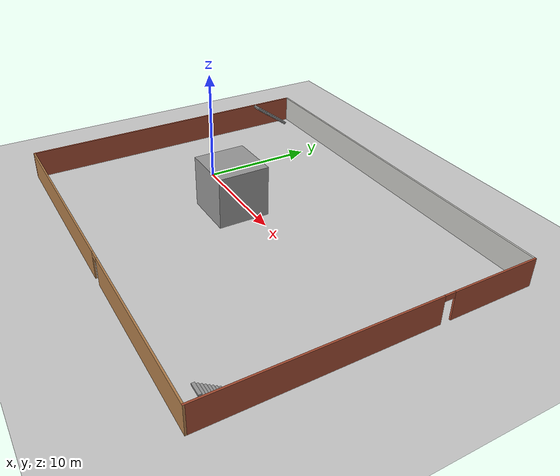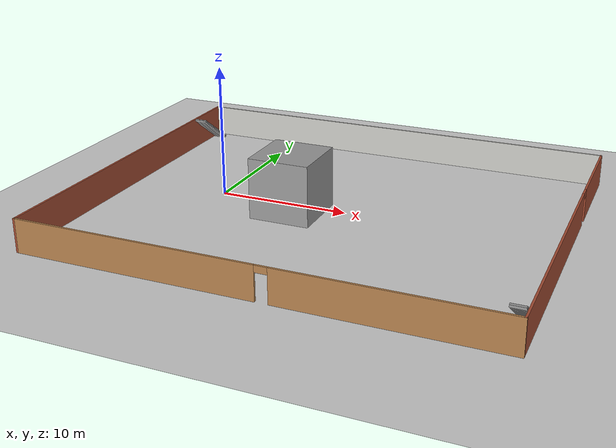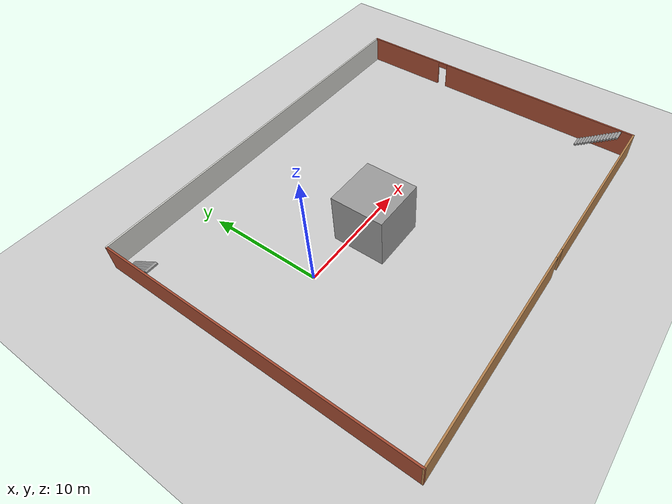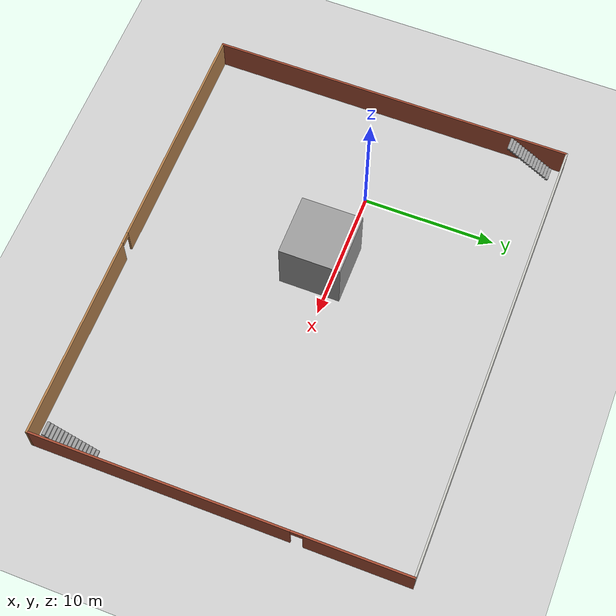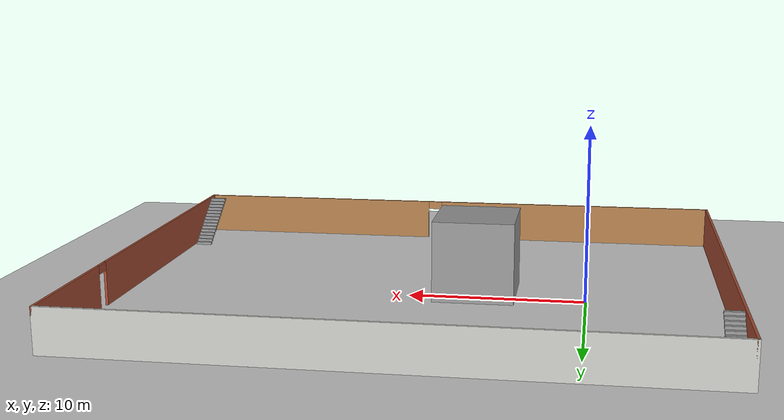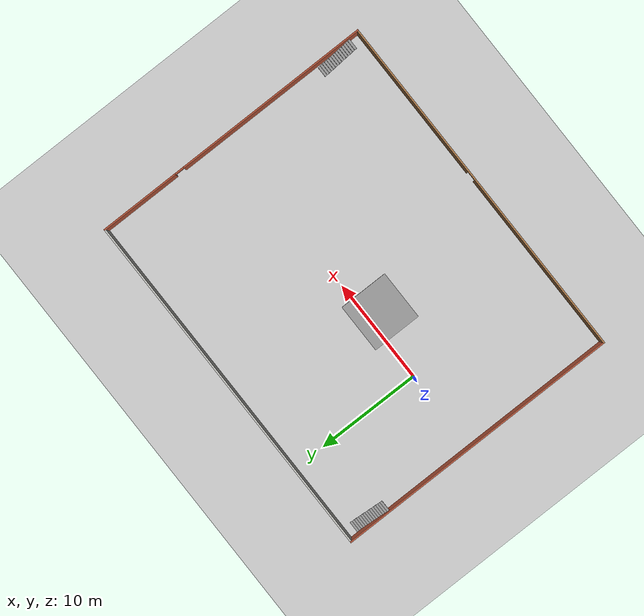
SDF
<sdf version="1.7">
 <world name="default">
  <scene><ambient>0.4 0.4 0.4 1</ambient><background>0.7 0.7 0.7 1</background><shadows>1</shadows></scene>
  <light name="sun" type="directional">
   <pose>0 0 10 0 -0 0</pose>
   <diffuse>0.8 0.8 0.8 1</diffuse>
   <specular>0.2 0.2 0.2 1</specular>
   <attenuation>
    <range>1000</range>
    <constant>0.9</constant>
    <linear>0.01</linear>
    <quadratic>0.001</quadratic>
   </attenuation>
   <direction>-0.5 0.1 -0.9</direction>
   <spot><inner_angle>0</inner_angle><outer_angle>0</outer_angle><falloff>0</falloff></spot>
  </light>
  <model name="ground_plane">
   <static>1</static>
   <link name="link">
    <collision name="collision">
     <geometry><plane><normal>0 0 1</normal><size>100 100</size></plane></geometry>
     <surface>
      <contact><collide_bitmask>65535</collide_bitmask></contact>
      <friction><ode><mu>100</mu><mu2>50</mu2></ode></friction>
     </surface>
    </collision>
    <visual name="visual">
     <cast_shadows>0</cast_shadows>
     <geometry><plane><normal>0 0 1</normal><size>100 100</size></plane></geometry>
     <material>
      <script><uri>file://media/materials/scripts/gazebo.material</uri><name>Gazebo/Grey</name></script>
     </material>
    </visual>
   </link>
  </model>
  <physics type="ode">
   <real_time_update_rate>1000</real_time_update_rate>
   <max_step_size>0.001</max_step_size>
   <real_time_factor>1</real_time_factor>
   <ode>
    <solver>
     <type>quick</type>
     <iters>150</iters>
     <precon_iters>0</precon_iters>
     <sor>1.4</sor>
     <use_dynamic_moi_rescaling>1</use_dynamic_moi_rescaling>
    </solver>
    <constraints>
     <cfm>1e-05</cfm>
     <erp>0.2</erp>
     <contact_max_correcting_vel>2000</contact_max_correcting_vel>
     <contact_surface_layer>0.01</contact_surface_layer>
    </constraints>
   </ode>
  </physics>
  <gravity>0 0 -9.8</gravity>
  <magnetic_field>6e-06 2.3e-05 -4.2e-05</magnetic_field>
  <atmosphere type="adiabatic"/>
  <spherical_coordinates>
   <surface_model>EARTH_WGS84</surface_model>
   <latitude_deg>0</latitude_deg>
   <longitude_deg>0</longitude_deg>
   <elevation>0</elevation>
   <heading_deg>0</heading_deg>
  </spherical_coordinates>
  <model name="warehouse_small">
   <pose>9.32387 -0.839581 0 0 -0 0</pose>
   <link name="Stairs_0">
    <visual name="Stairs_0_Visual_0">
     <pose>-16.4157 12.9249 0.083333 0 -0 0</pose>
     <geometry><box><size>1 0.233333 0.166667</size></box></geometry>
     <material>
      <script><uri>file://media/materials/scripts/gazebo.material</uri><name>Gazebo/Grey</name></script>
      <ambient>1 1 1 1</ambient>
     </material>
     <meta><layer>0</layer></meta>
    </visual>
    <collision name="Stairs_0_Collision_0">
     <geometry><box><size>1 0.233333 0.166667</size></box></geometry>
     <pose>-16.4157 12.9249 0.083333 0 -0 0</pose>
    </collision>
    <visual name="Stairs_0_Visual_1">
     <pose>-16.4157 12.6916 0.25 0 -0 0</pose>
     <geometry><box><size>1 0.233333 0.166667</size></box></geometry>
     <material>
      <script><uri>file://media/materials/scripts/gazebo.material</uri><name>Gazebo/Grey</name></script>
      <ambient>1 1 1 1</ambient>
     </material>
     <meta><layer>0</layer></meta>
    </visual>
    <collision name="Stairs_0_Collision_1">
     <geometry><box><size>1 0.233333 0.166667</size></box></geometry>
     <pose>-16.4157 12.6916 0.25 0 -0 0</pose>
    </collision>
    <visual name="Stairs_0_Visual_2">
     <pose>-16.4157 12.4583 0.416667 0 -0 0</pose>
     <geometry><box><size>1 0.233333 0.166667</size></box></geometry>
     <material>
      <script><uri>file://media/materials/scripts/gazebo.material</uri><name>Gazebo/Grey</name></script>
      <ambient>1 1 1 1</ambient>
     </material>
     <meta><layer>0</layer></meta>
    </visual>
    <collision name="Stairs_0_Collision_2">
     <geometry><box><size>1 0.233333 0.166667</size></box></geometry>
     <pose>-16.4157 12.4583 0.416667 0 -0 0</pose>
    </collision>
    <visual name="Stairs_0_Visual_3">
     <pose>-16.4157 12.2249 0.583333 0 -0 0</pose>
     <geometry><box><size>1 0.233333 0.166667</size></box></geometry>
     <material>
      <script><uri>file://media/materials/scripts/gazebo.material</uri><name>Gazebo/Grey</name></script>
      <ambient>1 1 1 1</ambient>
     </material>
     <meta><layer>0</layer></meta>
    </visual>
    <collision name="Stairs_0_Collision_3">
     <geometry><box><size>1 0.233333 0.166667</size></box></geometry>
     <pose>-16.4157 12.2249 0.583333 0 -0 0</pose>
    </collision>
    <visual name="Stairs_0_Visual_4">
     <pose>-16.4157 11.9916 0.75 0 -0 0</pose>
     <geometry><box><size>1 0.233333 0.166667</size></box></geometry>
     <material>
      <script><uri>file://media/materials/scripts/gazebo.material</uri><name>Gazebo/Grey</name></script>
      <ambient>1 1 1 1</ambient>
     </material>
     <meta><layer>0</layer></meta>
    </visual>
    <collision name="Stairs_0_Collision_4">
     <geometry><box><size>1 0.233333 0.166667</size></box></geometry>
     <pose>-16.4157 11.9916 0.75 0 -0 0</pose>
    </collision>
    <visual name="Stairs_0_Visual_5">
     <pose>-16.4157 11.7583 0.916667 0 -0 0</pose>
     <geometry><box><size>1 0.233333 0.166667</size></box></geometry>
     <material>
      <script><uri>file://media/materials/scripts/gazebo.material</uri><name>Gazebo/Grey</name></script>
      <ambient>1 1 1 1</ambient>
     </material>
     <meta><layer>0</layer></meta>
    </visual>
    <collision name="Stairs_0_Collision_5">
     <geometry><box><size>1 0.233333 0.166667</size></box></geometry>
     <pose>-16.4157 11.7583 0.916667 0 -0 0</pose>
    </collision>
    <visual name="Stairs_0_Visual_6">
     <pose>-16.4157 11.5249 1.08333 0 -0 0</pose>
     <geometry><box><size>1 0.233333 0.166667</size></box></geometry>
     <material>
      <script><uri>file://media/materials/scripts/gazebo.material</uri><name>Gazebo/Grey</name></script>
      <ambient>1 1 1 1</ambient>
     </material>
     <meta><layer>0</layer></meta>
    </visual>
    <collision name="Stairs_0_Collision_6">
     <geometry><box><size>1 0.233333 0.166667</size></box></geometry>
     <pose>-16.4157 11.5249 1.08333 0 -0 0</pose>
    </collision>
    <visual name="Stairs_0_Visual_7">
     <pose>-16.4157 11.2916 1.25 0 -0 0</pose>
     <geometry><box><size>1 0.233333 0.166667</size></box></geometry>
     <material>
      <script><uri>file://media/materials/scripts/gazebo.material</uri><name>Gazebo/Grey</name></script>
      <ambient>1 1 1 1</ambient>
     </material>
     <meta><layer>0</layer></meta>
    </visual>
    <collision name="Stairs_0_Collision_7">
     <geometry><box><size>1 0.233333 0.166667</size></box></geometry>
     <pose>-16.4157 11.2916 1.25 0 -0 0</pose>
    </collision>
    <visual name="Stairs_0_Visual_8">
     <pose>-16.4157 11.0583 1.41667 0 -0 0</pose>
     <geometry><box><size>1 0.233333 0.166667</size></box></geometry>
     <material>
      <script><uri>file://media/materials/scripts/gazebo.material</uri><name>Gazebo/Grey</name></script>
      <ambient>1 1 1 1</ambient>
     </material>
     <meta><layer>0</layer></meta>
    </visual>
    <collision name="Stairs_0_Collision_8">
     <geometry><box><size>1 0.233333 0.166667</size></box></geometry>
     <pose>-16.4157 11.0583 1.41667 0 -0 0</pose>
    </collision>
    <visual name="Stairs_0_Visual_9">
     <pose>-16.4157 10.8249 1.58333 0 -0 0</pose>
     <geometry><box><size>1 0.233333 0.166667</size></box></geometry>
     <material>
      <script><uri>file://media/materials/scripts/gazebo.material</uri><name>Gazebo/Grey</name></script>
      <ambient>1 1 1 1</ambient>
     </material>
     <meta><layer>0</layer></meta>
    </visual>
    <collision name="Stairs_0_Collision_9">
     <geometry><box><size>1 0.233333 0.166667</size></box></geometry>
     <pose>-16.4157 10.8249 1.58333 0 -0 0</pose>
    </collision>
    <visual name="Stairs_0_Visual_10">
     <pose>-16.4157 10.5916 1.75 0 -0 0</pose>
     <geometry><box><size>1 0.233333 0.166667</size></box></geometry>
     <material>
      <script><uri>file://media/materials/scripts/gazebo.material</uri><name>Gazebo/Grey</name></script>
      <ambient>1 1 1 1</ambient>
     </material>
     <meta><layer>0</layer></meta>
    </visual>
    <collision name="Stairs_0_Collision_10">
     <geometry><box><size>1 0.233333 0.166667</size></box></geometry>
     <pose>-16.4157 10.5916 1.75 0 -0 0</pose>
    </collision>
    <visual name="Stairs_0_Visual_11">
     <pose>-16.4157 10.3583 1.91667 0 -0 0</pose>
     <geometry><box><size>1 0.233333 0.166667</size></box></geometry>
     <material>
      <script><uri>file://media/materials/scripts/gazebo.material</uri><name>Gazebo/Grey</name></script>
      <ambient>1 1 1 1</ambient>
     </material>
     <meta><layer>0</layer></meta>
    </visual>
    <collision name="Stairs_0_Collision_11">
     <geometry><box><size>1 0.233333 0.166667</size></box></geometry>
     <pose>-16.4157 10.3583 1.91667 0 -0 0</pose>
    </collision>
    <visual name="Stairs_0_Visual_12">
     <pose>-16.4157 10.1249 2.08333 0 -0 0</pose>
     <geometry><box><size>1 0.233333 0.166667</size></box></geometry>
     <material>
      <script><uri>file://media/materials/scripts/gazebo.material</uri><name>Gazebo/Grey</name></script>
      <ambient>1 1 1 1</ambient>
     </material>
     <meta><layer>0</layer></meta>
    </visual>
    <collision name="Stairs_0_Collision_12">
     <geometry><box><size>1 0.233333 0.166667</size></box></geometry>
     <pose>-16.4157 10.1249 2.08333 0 -0 0</pose>
    </collision>
    <visual name="Stairs_0_Visual_13">
     <pose>-16.4157 9.8916 2.25 0 -0 0</pose>
     <geometry><box><size>1 0.233333 0.166667</size></box></geometry>
     <material>
      <script><uri>file://media/materials/scripts/gazebo.material</uri><name>Gazebo/Grey</name></script>
      <ambient>1 1 1 1</ambient>
     </material>
     <meta><layer>0</layer></meta>
    </visual>
    <collision name="Stairs_0_Collision_13">
     <geometry><box><size>1 0.233333 0.166667</size></box></geometry>
     <pose>-16.4157 9.8916 2.25 0 -0 0</pose>
    </collision>
    <visual name="Stairs_0_Visual_14">
     <pose>-16.4157 9.65827 2.41667 0 -0 0</pose>
     <geometry><box><size>1 0.233333 0.166667</size></box></geometry>
     <material>
      <script><uri>file://media/materials/scripts/gazebo.material</uri><name>Gazebo/Grey</name></script>
      <ambient>1 1 1 1</ambient>
     </material>
     <meta><layer>0</layer></meta>
    </visual>
    <collision name="Stairs_0_Collision_14">
     <geometry><box><size>1 0.233333 0.166667</size></box></geometry>
     <pose>-16.4157 9.65827 2.41667 0 -0 0</pose>
    </collision>
   </link>
   <link name="Stairs_1">
    <visual name="Stairs_1_Visual_0">
     <pose>16.377 -9.40593 0.083333 0 -0 0</pose>
     <geometry><box><size>1 0.233333 0.166667</size></box></geometry>
     <material>
      <script><uri>file://media/materials/scripts/gazebo.material</uri><name>Gazebo/Grey</name></script>
      <ambient>1 1 1 1</ambient>
     </material>
     <meta><layer>0</layer></meta>
    </visual>
    <collision name="Stairs_1_Collision_0">
     <geometry><box><size>1 0.233333 0.166667</size></box></geometry>
     <pose>16.377 -9.40593 0.083333 0 -0 0</pose>
    </collision>
    <visual name="Stairs_1_Visual_1">
     <pose>16.377 -9.63927 0.25 0 -0 0</pose>
     <geometry><box><size>1 0.233333 0.166667</size></box></geometry>
     <material>
      <script><uri>file://media/materials/scripts/gazebo.material</uri><name>Gazebo/Grey</name></script>
      <ambient>1 1 1 1</ambient>
     </material>
     <meta><layer>0</layer></meta>
    </visual>
    <collision name="Stairs_1_Collision_1">
     <geometry><box><size>1 0.233333 0.166667</size></box></geometry>
     <pose>16.377 -9.63927 0.25 0 -0 0</pose>
    </collision>
    <visual name="Stairs_1_Visual_2">
     <pose>16.377 -9.8726 0.416667 0 -0 0</pose>
     <geometry><box><size>1 0.233333 0.166667</size></box></geometry>
     <material>
      <script><uri>file://media/materials/scripts/gazebo.material</uri><name>Gazebo/Grey</name></script>
      <ambient>1 1 1 1</ambient>
     </material>
     <meta><layer>0</layer></meta>
    </visual>
    <collision name="Stairs_1_Collision_2">
     <geometry><box><size>1 0.233333 0.166667</size></box></geometry>
     <pose>16.377 -9.8726 0.416667 0 -0 0</pose>
    </collision>
    <visual name="Stairs_1_Visual_3">
     <pose>16.377 -10.1059 0.583333 0 -0 0</pose>
     <geometry><box><size>1 0.233333 0.166667</size></box></geometry>
     <material>
      <script><uri>file://media/materials/scripts/gazebo.material</uri><name>Gazebo/Grey</name></script>
      <ambient>1 1 1 1</ambient>
     </material>
     <meta><layer>0</layer></meta>
    </visual>
    <collision name="Stairs_1_Collision_3">
     <geometry><box><size>1 0.233333 0.166667</size></box></geometry>
     <pose>16.377 -10.1059 0.583333 0 -0 0</pose>
    </collision>
    <visual name="Stairs_1_Visual_4">
     <pose>16.377 -10.3393 0.75 0 -0 0</pose>
     <geometry><box><size>1 0.233333 0.166667</size></box></geometry>
     <material>
      <script><uri>file://media/materials/scripts/gazebo.material</uri><name>Gazebo/Grey</name></script>
      <ambient>1 1 1 1</ambient>
     </material>
     <meta><layer>0</layer></meta>
    </visual>
    <collision name="Stairs_1_Collision_4">
     <geometry><box><size>1 0.233333 0.166667</size></box></geometry>
     <pose>16.377 -10.3393 0.75 0 -0 0</pose>
    </collision>
    <visual name="Stairs_1_Visual_5">
     <pose>16.377 -10.5726 0.916667 0 -0 0</pose>
     <geometry><box><size>1 0.233333 0.166667</size></box></geometry>
     <material>
      <script><uri>file://media/materials/scripts/gazebo.material</uri><name>Gazebo/Grey</name></script>
      <ambient>1 1 1 1</ambient>
     </material>
     <meta><layer>0</layer></meta>
    </visual>
    <collision name="Stairs_1_Collision_5">
     <geometry><box><size>1 0.233333 0.166667</size></box></geometry>
     <pose>16.377 -10.5726 0.916667 0 -0 0</pose>
    </collision>
    <visual name="Stairs_1_Visual_6">
     <pose>16.377 -10.8059 1.08333 0 -0 0</pose>
     <geometry><box><size>1 0.233333 0.166667</size></box></geometry>
     <material>
      <script><uri>file://media/materials/scripts/gazebo.material</uri><name>Gazebo/Grey</name></script>
      <ambient>1 1 1 1</ambient>
     </material>
     <meta><layer>0</layer></meta>
    </visual>
    <collision name="Stairs_1_Collision_6">
     <geometry><box><size>1 0.233333 0.166667</size></box></geometry>
     <pose>16.377 -10.8059 1.08333 0 -0 0</pose>
    </collision>
    <visual name="Stairs_1_Visual_7">
     <pose>16.377 -11.0393 1.25 0 -0 0</pose>
     <geometry><box><size>1 0.233333 0.166667</size></box></geometry>
     <material>
      <script><uri>file://media/materials/scripts/gazebo.material</uri><name>Gazebo/Grey</name></script>
      <ambient>1 1 1 1</ambient>
     </material>
     <meta><layer>0</layer></meta>
    </visual>
    <collision name="Stairs_1_Collision_7">
     <geometry><box><size>1 0.233333 0.166667</size></box></geometry>
     <pose>16.377 -11.0393 1.25 0 -0 0</pose>
    </collision>
    <visual name="Stairs_1_Visual_8">
     <pose>16.377 -11.2726 1.41667 0 -0 0</pose>
     <geometry><box><size>1 0.233333 0.166667</size></box></geometry>
     <material>
      <script><uri>file://media/materials/scripts/gazebo.material</uri><name>Gazebo/Grey</name></script>
      <ambient>1 1 1 1</ambient>
     </material>
     <meta><layer>0</layer></meta>
    </visual>
    <collision name="Stairs_1_Collision_8">
     <geometry><box><size>1 0.233333 0.166667</size></box></geometry>
     <pose>16.377 -11.2726 1.41667 0 -0 0</pose>
    </collision>
    <visual name="Stairs_1_Visual_9">
     <pose>16.377 -11.5059 1.58333 0 -0 0</pose>
     <geometry><box><size>1 0.233333 0.166667</size></box></geometry>
     <material>
      <script><uri>file://media/materials/scripts/gazebo.material</uri><name>Gazebo/Grey</name></script>
      <ambient>1 1 1 1</ambient>
     </material>
     <meta><layer>0</layer></meta>
    </visual>
    <collision name="Stairs_1_Collision_9">
     <geometry><box><size>1 0.233333 0.166667</size></box></geometry>
     <pose>16.377 -11.5059 1.58333 0 -0 0</pose>
    </collision>
    <visual name="Stairs_1_Visual_10">
     <pose>16.377 -11.7393 1.75 0 -0 0</pose>
     <geometry><box><size>1 0.233333 0.166667</size></box></geometry>
     <material>
      <script><uri>file://media/materials/scripts/gazebo.material</uri><name>Gazebo/Grey</name></script>
      <ambient>1 1 1 1</ambient>
     </material>
     <meta><layer>0</layer></meta>
    </visual>
    <collision name="Stairs_1_Collision_10">
     <geometry><box><size>1 0.233333 0.166667</size></box></geometry>
     <pose>16.377 -11.7393 1.75 0 -0 0</pose>
    </collision>
    <visual name="Stairs_1_Visual_11">
     <pose>16.377 -11.9726 1.91667 0 -0 0</pose>
     <geometry><box><size>1 0.233333 0.166667</size></box></geometry>
     <material>
      <script><uri>file://media/materials/scripts/gazebo.material</uri><name>Gazebo/Grey</name></script>
      <ambient>1 1 1 1</ambient>
     </material>
     <meta><layer>0</layer></meta>
    </visual>
    <collision name="Stairs_1_Collision_11">
     <geometry><box><size>1 0.233333 0.166667</size></box></geometry>
     <pose>16.377 -11.9726 1.91667 0 -0 0</pose>
    </collision>
    <visual name="Stairs_1_Visual_12">
     <pose>16.377 -12.2059 2.08333 0 -0 0</pose>
     <geometry><box><size>1 0.233333 0.166667</size></box></geometry>
     <material>
      <script><uri>file://media/materials/scripts/gazebo.material</uri><name>Gazebo/Grey</name></script>
      <ambient>1 1 1 1</ambient>
     </material>
     <meta><layer>0</layer></meta>
    </visual>
    <collision name="Stairs_1_Collision_12">
     <geometry><box><size>1 0.233333 0.166667</size></box></geometry>
     <pose>16.377 -12.2059 2.08333 0 -0 0</pose>
    </collision>
    <visual name="Stairs_1_Visual_13">
     <pose>16.377 -12.4393 2.25 0 -0 0</pose>
     <geometry><box><size>1 0.233333 0.166667</size></box></geometry>
     <material>
      <script><uri>file://media/materials/scripts/gazebo.material</uri><name>Gazebo/Grey</name></script>
      <ambient>1 1 1 1</ambient>
     </material>
     <meta><layer>0</layer></meta>
    </visual>
    <collision name="Stairs_1_Collision_13">
     <geometry><box><size>1 0.233333 0.166667</size></box></geometry>
     <pose>16.377 -12.4393 2.25 0 -0 0</pose>
    </collision>
    <visual name="Stairs_1_Visual_14">
     <pose>16.377 -12.6726 2.41667 0 -0 0</pose>
     <geometry><box><size>1 0.233333 0.166667</size></box></geometry>
     <material>
      <script><uri>file://media/materials/scripts/gazebo.material</uri><name>Gazebo/Grey</name></script>
      <ambient>1 1 1 1</ambient>
     </material>
     <meta><layer>0</layer></meta>
    </visual>
    <collision name="Stairs_1_Collision_14">
     <geometry><box><size>1 0.233333 0.166667</size></box></geometry>
     <pose>16.377 -12.6726 2.41667 0 -0 0</pose>
    </collision>
   </link>
   <link name="Wall_6">
    <pose>17.05 -0 0 0 -0 -1.5708</pose>
    <visual name="Wall_6_Visual_0">
     <pose>-9.994 0 1.25 0 -0 0</pose>
     <geometry><box><size>7.762 0.15 2.5</size></box></geometry>
     <material>
      <script><uri>file://media/materials/scripts/gazebo.material</uri><name>Gazebo/Bricks</name></script>
      <ambient>1 1 1 1</ambient>
     </material>
     <meta><layer>0</layer></meta>
    </visual>
    <collision name="Wall_6_Collision_0">
     <geometry><box><size>7.762 0.15 2.5</size></box></geometry>
     <pose>-9.994 0 1.25 0 -0 0</pose>
    </collision>
    <visual name="Wall_6_Visual_1">
     <pose>4.331 0 1.25 0 -0 0</pose>
     <geometry><box><size>19.088 0.15 2.5</size></box></geometry>
     <material>
      <script><uri>file://media/materials/scripts/gazebo.material</uri><name>Gazebo/Bricks</name></script>
      <ambient>1 1 1 1</ambient>
     </material>
     <meta><layer>0</layer></meta>
    </visual>
    <collision name="Wall_6_Collision_1">
     <geometry><box><size>19.088 0.15 2.5</size></box></geometry>
     <pose>4.331 0 1.25 0 -0 0</pose>
    </collision>
    <visual name="Wall_6_Visual_2">
     <pose>-5.663 0 2.25 0 -0 0</pose>
     <geometry><box><size>0.9 0.15 0.5</size></box></geometry>
     <material>
      <script><uri>file://media/materials/scripts/gazebo.material</uri><name>Gazebo/Bricks</name></script>
      <ambient>1 1 1 1</ambient>
     </material>
     <meta><layer>0</layer></meta>
    </visual>
    <collision name="Wall_6_Collision_2">
     <geometry><box><size>0.9 0.15 0.5</size></box></geometry>
     <pose>-5.663 0 2.25 0 -0 0</pose>
    </collision>
   </link>
   <link name="Wall_7">
    <pose>1e-06 -13.8 0 0 -0 3.14159</pose>
    <visual name="Wall_7_Visual_0">
     <pose>-9.38963 0 1.25 0 -0 0</pose>
     <geometry><box><size>15.4707 0.15 2.5</size></box></geometry>
     <material>
      <script><uri>file://media/materials/scripts/gazebo.material</uri><name>Gazebo/Wood</name></script>
      <ambient>1 1 1 1</ambient>
     </material>
     <meta><layer>0</layer></meta>
    </visual>
    <collision name="Wall_7_Collision_0">
     <geometry><box><size>15.4707 0.15 2.5</size></box></geometry>
     <pose>-9.38963 0 1.25 0 -0 0</pose>
    </collision>
    <visual name="Wall_7_Visual_1">
     <pose>8.18537 0 1.25 0 -0 0</pose>
     <geometry><box><size>17.8793 0.15 2.5</size></box></geometry>
     <material>
      <script><uri>file://media/materials/scripts/gazebo.material</uri><name>Gazebo/Wood</name></script>
      <ambient>1 1 1 1</ambient>
     </material>
     <meta><layer>0</layer></meta>
    </visual>
    <collision name="Wall_7_Collision_1">
     <geometry><box><size>17.8793 0.15 2.5</size></box></geometry>
     <pose>8.18537 0 1.25 0 -0 0</pose>
    </collision>
    <visual name="Wall_7_Visual_2">
     <pose>-1.20426 0 2.25 0 -0 0</pose>
     <geometry><box><size>0.9 0.15 0.5</size></box></geometry>
     <material>
      <script><uri>file://media/materials/scripts/gazebo.material</uri><name>Gazebo/Wood</name></script>
      <ambient>1 1 1 1</ambient>
     </material>
     <meta><layer>0</layer></meta>
    </visual>
    <collision name="Wall_7_Collision_2">
     <geometry><box><size>0.9 0.15 0.5</size></box></geometry>
     <pose>-1.20426 0 2.25 0 -0 0</pose>
    </collision>
   </link>
   <link name="Wall_8">
    <collision name="Wall_8_Collision">
     <geometry><box><size>27.75 0.15 2.5</size></box></geometry>
     <pose>0 0 1.25 0 -0 0</pose>
    </collision>
    <visual name="Wall_8_Visual">
     <pose>0 0 1.25 0 -0 0</pose>
     <geometry><box><size>27.75 0.15 2.5</size></box></geometry>
     <material>
      <script><uri>file://media/materials/scripts/gazebo.material</uri><name>Gazebo/Bricks</name></script>
      <ambient>1 1 1 1</ambient>
     </material>
     <meta><layer>0</layer></meta>
    </visual>
    <pose>-17.05 -0 0 0 -0 1.5708</pose>
   </link>
   <link name="Wall_9">
    <collision name="Wall_9_Collision">
     <geometry><box><size>34.25 0.15 2.5</size></box></geometry>
     <pose>0 0 1.25 0 -0 0</pose>
    </collision>
    <visual name="Wall_9_Visual">
     <pose>0 0 1.25 0 -0 0</pose>
     <geometry><box><size>34.25 0.15 2.5</size></box></geometry>
     <material>
      <script><uri>file://media/materials/scripts/gazebo.material</uri><name>Gazebo/CeilingTiled</name></script>
      <ambient>1 1 1 1</ambient>
     </material>
     <meta><layer>0</layer></meta>
    </visual>
    <pose>1e-06 13.8 0 0 -0 0</pose>
   </link>
   <static>1</static>
  </model>
  <model name="unit_box">
   <pose>6.25952 -1.20114 2.30527 -2e-06 0 1.2e-05</pose>
   <link name="link">
    <inertial>
     <mass>1</mass>
     <inertia>
      <ixx>0.166667</ixx>
      <ixy>0</ixy>
      <ixz>0</ixz>
      <iyy>0.166667</iyy>
      <iyz>0</iyz>
      <izz>0.166667</izz>
     </inertia>
    </inertial>
    <collision name="collision"><geometry><box><size>4.61055 4.61055 4.61055</size></box></geometry></collision>
    <visual name="visual">
     <geometry><box><size>4.61055 4.61055 4.61055</size></box></geometry>
     <material>
      <script><name>Gazebo/Grey</name><uri>file://media/materials/scripts/gazebo.material</uri></script>
     </material>
    </visual>
   </link>
  </model>
 </world>
</sdf>
